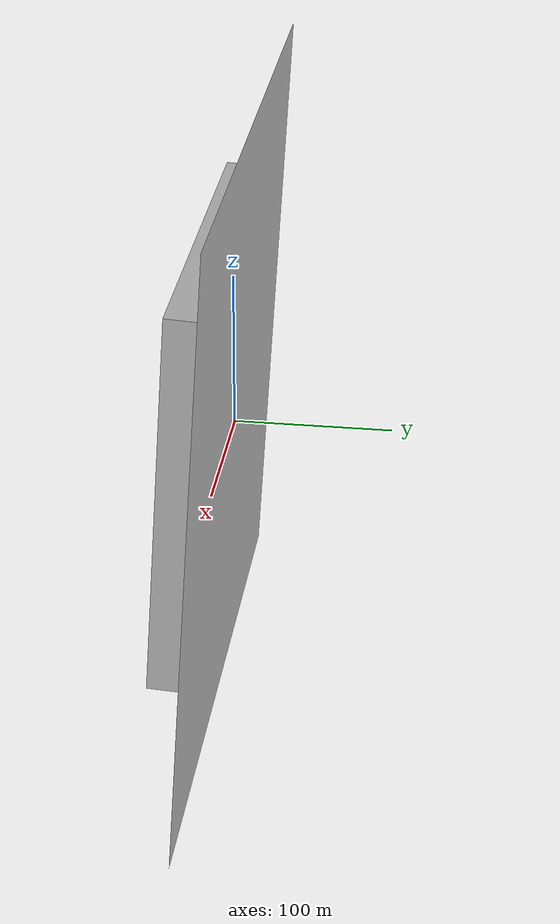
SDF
<?xml version="1.0"?>
<sdf version='1.5'>
  <model name='step'>
    <pose>0 0 0 1.507 0 0</pose>
    <static>True</static>
    <link name='base'>
    	<collision name="collision">
        <geometry>
            <mesh><uri>model://step/meshes/square.obj</uri>
            </mesh>
          </geometry>
      </collision>
        <visual name="visual">
          <geometry>
            <mesh><uri>model://step/meshes/square.obj</uri>
            </mesh>
          </geometry>
        </visual>
   </link>
 </model>
</sdf>
